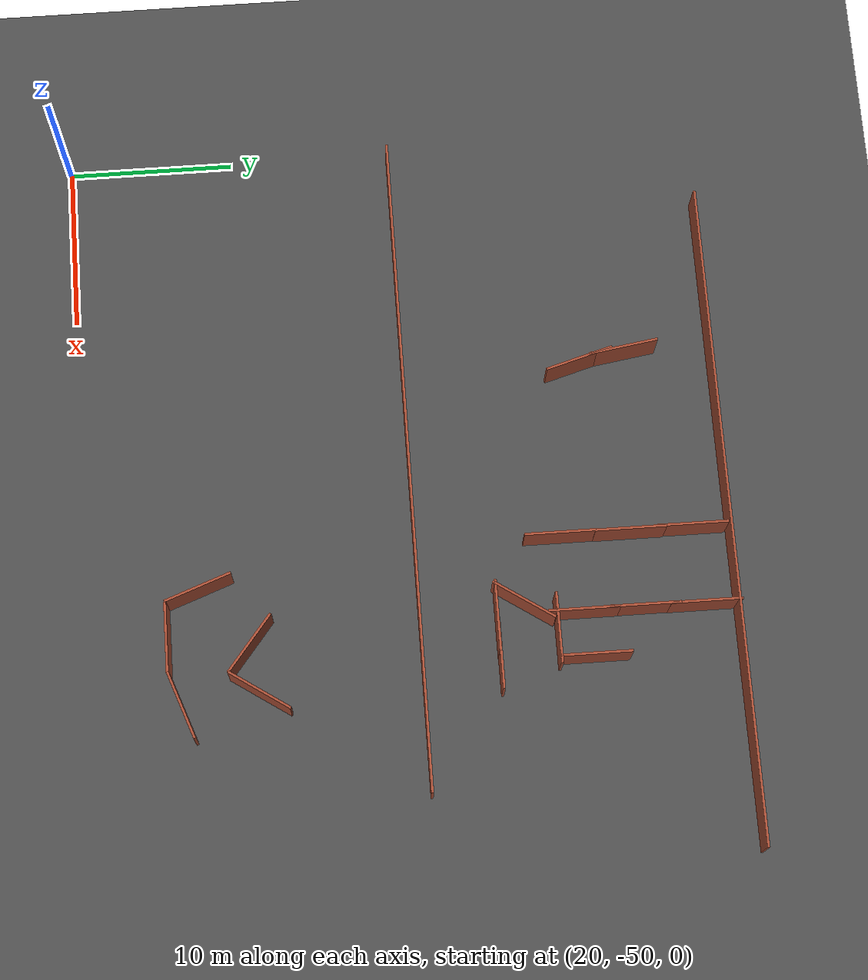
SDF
<sdf version="1.6">
 <world name="default">
  <model name="ground_plane">
   <static>1</static>
   <link name="link">
    <collision name="collision">
     <geometry><plane><normal>0 0 1</normal><size>200 200</size></plane></geometry>
     <surface><friction><ode><mu>100</mu><mu2>50</mu2></ode></friction></surface>
    </collision>
    <visual name="visual">
     <cast_shadows>0</cast_shadows>
     <geometry><plane><normal>0 0 1</normal><size>200 200</size></plane></geometry>
     <material>
      <script><uri>file://media/materials/scripts/gazebo.material</uri><name>Gazebo/Grey</name></script>
     </material>
    </visual>
   </link>
  </model>
  <model name="asphalt_plane">
   <static>1</static>
   <link name="link">
    <collision name="collision"><geometry><box><size>200 200 0.1</size></box></geometry></collision>
    <visual name="visual">
     <cast_shadows>0</cast_shadows>
     <geometry><box><size>200 200 0.1</size></box></geometry>
     <material>
      <script>
       <uri>model://asphalt_plane/materials/scripts</uri>
       <uri>model://asphalt_plane/materials/textures</uri>
       <name>vrc/asphalt</name>
      </script>
     </material>
    </visual>
   </link>
  </model>
  <model name="longwall_clone">
   <pose>40.5339 -30.0862 0 0 -0 0</pose>
   <link name="Wall_0">
    <collision name="Wall_0_Collision">
     <geometry><box><size>40.5 0.15 2.5</size></box></geometry>
     <pose>0 0 1.25 0 -0 0</pose>
    </collision>
    <visual name="Wall_0_Visual">
     <pose>0 0 1.25 0 -0 0</pose>
     <geometry><box><size>40.5 0.15 2.5</size></box></geometry>
     <material>
      <script><uri>file://media/materials/scripts/gazebo.material</uri><name>Gazebo/Bricks</name></script>
      <ambient>1 1 1 1</ambient>
     </material>
    </visual>
    <pose>1e-06 0 0 0 -0 0</pose>
   </link>
   <static>1</static>
  </model>
  <model name="worlds_1_clone_1_clone_7_clone_clone">
   <pose>54.1633 -39.674 0 0 0 -0.589381</pose>
   <link name="Wall_0">
    <collision name="Wall_0_Collision">
     <geometry><box><size>4.25 0.15 2.5</size></box></geometry>
     <pose>0 0 1.25 0 -0 0</pose>
    </collision>
    <visual name="Wall_0_Visual">
     <pose>0 0 1.25 0 -0 0</pose>
     <geometry><box><size>4.25 0.15 2.5</size></box></geometry>
     <material>
      <script><uri>file://media/materials/scripts/gazebo.material</uri><name>Gazebo/Bricks</name></script>
      <ambient>1 1 1 1</ambient>
     </material>
    </visual>
    <pose>0 -0 0 0 -0 1.5708</pose>
   </link>
   <static>1</static>
  </model>
  <model name="worlds_1_clone_0_clone_clone_0_clone_clone_0_clone_clone">
   <pose>47.8022 -43.0147 0 0 0 -2.78777</pose>
   <link name="Wall_0">
    <collision name="Wall_0_Collision">
     <geometry><box><size>4.25 0.15 2.5</size></box></geometry>
     <pose>0 0 1.25 0 -0 0</pose>
    </collision>
    <visual name="Wall_0_Visual">
     <pose>0 0 1.25 0 -0 0</pose>
     <geometry><box><size>4.25 0.15 2.5</size></box></geometry>
     <material>
      <script><uri>file://media/materials/scripts/gazebo.material</uri><name>Gazebo/Bricks</name></script>
      <ambient>1 1 1 1</ambient>
     </material>
    </visual>
    <pose>0 -0 0 0 -0 1.5708</pose>
   </link>
   <static>1</static>
  </model>
  <model name="worlds_1_clone_0_clone_clone_0_clone_clone_0_clone_clone_0">
   <pose>54.7413 -44.255 0 0 0 -1.22347</pose>
   <link name="Wall_0">
    <collision name="Wall_0_Collision">
     <geometry><box><size>4.25 0.15 2.5</size></box></geometry>
     <pose>0 0 1.25 0 -0 0</pose>
    </collision>
    <visual name="Wall_0_Visual">
     <pose>0 0 1.25 0 -0 0</pose>
     <geometry><box><size>4.25 0.15 2.5</size></box></geometry>
     <material>
      <script><uri>file://media/materials/scripts/gazebo.material</uri><name>Gazebo/Bricks</name></script>
      <ambient>1 1 1 1</ambient>
     </material>
    </visual>
    <pose>0 -0 0 0 -0 1.5708</pose>
   </link>
   <static>1</static>
  </model>
  <model name="worlds_1_clone_0_clone_clone_0_clone_clone_0_clone_clone_clone">
   <pose>50.6997 -44.9664 0 0 0 -1.57092</pose>
   <link name="Wall_0">
    <collision name="Wall_0_Collision">
     <geometry><box><size>4.25 0.15 2.5</size></box></geometry>
     <pose>0 0 1.25 0 -0 0</pose>
    </collision>
    <visual name="Wall_0_Visual">
     <pose>0 0 1.25 0 -0 0</pose>
     <geometry><box><size>4.25 0.15 2.5</size></box></geometry>
     <material>
      <script><uri>file://media/materials/scripts/gazebo.material</uri><name>Gazebo/Bricks</name></script>
      <ambient>1 1 1 1</ambient>
     </material>
    </visual>
    <pose>0 -0 0 0 -0 1.5708</pose>
   </link>
   <static>1</static>
  </model>
  <model name="worlds_1_clone_1_clone_7_clone_clone_0">
   <pose>51.3459 -40.1271 0 0 -0 0.90029</pose>
   <link name="Wall_0">
    <collision name="Wall_0_Collision">
     <geometry><box><size>4.25 0.15 2.5</size></box></geometry>
     <pose>0 0 1.25 0 -0 0</pose>
    </collision>
    <visual name="Wall_0_Visual">
     <pose>0 0 1.25 0 -0 0</pose>
     <geometry><box><size>4.25 0.15 2.5</size></box></geometry>
     <material>
      <script><uri>file://media/materials/scripts/gazebo.material</uri><name>Gazebo/Bricks</name></script>
      <ambient>1 1 1 1</ambient>
     </material>
    </visual>
    <pose>0 -0 0 0 -0 1.5708</pose>
   </link>
   <static>1</static>
  </model>
  <model name="longwall_clone_clone_clone">
   <pose>44.9259 -11.2589 0 0 -0 0</pose>
   <link name="Wall_0">
    <collision name="Wall_0_Collision">
     <geometry><box><size>40.5 0.15 2.5</size></box></geometry>
     <pose>0 0 1.25 0 -0 0</pose>
    </collision>
    <visual name="Wall_0_Visual">
     <pose>0 0 1.25 0 -0 0</pose>
     <geometry><box><size>40.5 0.15 2.5</size></box></geometry>
     <material>
      <script><uri>file://media/materials/scripts/gazebo.material</uri><name>Gazebo/Bricks</name></script>
      <ambient>1 1 1 1</ambient>
     </material>
    </visual>
    <pose>1e-06 0 0 0 -0 0</pose>
   </link>
   <static>1</static>
  </model>
  <model name="worlds_1_clone_1_clone_clone_0_clone_3">
   <pose>45.9096 -21.4531 0 0 -0 0</pose>
   <link name="Wall_0">
    <collision name="Wall_0_Collision">
     <geometry><box><size>4.25 0.15 2.5</size></box></geometry>
     <pose>0 0 1.25 0 -0 0</pose>
    </collision>
    <visual name="Wall_0_Visual">
     <pose>0 0 1.25 0 -0 0</pose>
     <geometry><box><size>4.25 0.15 2.5</size></box></geometry>
     <material>
      <script><uri>file://media/materials/scripts/gazebo.material</uri><name>Gazebo/Bricks</name></script>
      <ambient>1 1 1 1</ambient>
     </material>
    </visual>
    <pose>0 -0 0 0 -0 1.5708</pose>
   </link>
   <static>1</static>
  </model>
  <model name="worlds_1_clone_1_clone_clone_0_clone_5">
   <pose>45.9289 -17.2509 0 0 -0 0</pose>
   <link name="Wall_0">
    <collision name="Wall_0_Collision">
     <geometry><box><size>4.25 0.15 2.5</size></box></geometry>
     <pose>0 0 1.25 0 -0 0</pose>
    </collision>
    <visual name="Wall_0_Visual">
     <pose>0 0 1.25 0 -0 0</pose>
     <geometry><box><size>4.25 0.15 2.5</size></box></geometry>
     <material>
      <script><uri>file://media/materials/scripts/gazebo.material</uri><name>Gazebo/Bricks</name></script>
      <ambient>1 1 1 1</ambient>
     </material>
    </visual>
    <pose>0 -0 0 0 -0 1.5708</pose>
   </link>
   <static>1</static>
  </model>
  <model name="worlds_1_clone_1_clone_clone_0_clone_6">
   <pose>45.8934 -13.5337 0 0 -0 0</pose>
   <link name="Wall_0">
    <collision name="Wall_0_Collision">
     <geometry><box><size>4.25 0.15 2.5</size></box></geometry>
     <pose>0 0 1.25 0 -0 0</pose>
    </collision>
    <visual name="Wall_0_Visual">
     <pose>0 0 1.25 0 -0 0</pose>
     <geometry><box><size>4.25 0.15 2.5</size></box></geometry>
     <material>
      <script><uri>file://media/materials/scripts/gazebo.material</uri><name>Gazebo/Bricks</name></script>
      <ambient>1 1 1 1</ambient>
     </material>
    </visual>
    <pose>0 -0 0 0 -0 1.5708</pose>
   </link>
   <static>1</static>
  </model>
  <model name="worlds_1_clone_0_clone_clone_0_clone_2_clone">
   <pose>51.6197 -22 0 0 0 -1.57092</pose>
   <link name="Wall_0">
    <collision name="Wall_0_Collision">
     <geometry><box><size>4.25 0.15 2.5</size></box></geometry>
     <pose>0 0 1.25 0 -0 0</pose>
    </collision>
    <visual name="Wall_0_Visual">
     <pose>0 0 1.25 0 -0 0</pose>
     <geometry><box><size>4.25 0.15 2.5</size></box></geometry>
     <material>
      <script><uri>file://media/materials/scripts/gazebo.material</uri><name>Gazebo/Bricks</name></script>
      <ambient>1 1 1 1</ambient>
     </material>
    </visual>
    <pose>0 -0 0 0 -0 1.5708</pose>
   </link>
   <static>1</static>
  </model>
  <model name="worlds_1_clone_1_clone_0_clone">
   <pose>53.3077 -19.9406 0 0 -0 0</pose>
   <link name="Wall_0">
    <collision name="Wall_0_Collision">
     <geometry><box><size>4.25 0.15 2.5</size></box></geometry>
     <pose>0 0 1.25 0 -0 0</pose>
    </collision>
    <visual name="Wall_0_Visual">
     <pose>0 0 1.25 0 -0 0</pose>
     <geometry><box><size>4.25 0.15 2.5</size></box></geometry>
     <material>
      <script><uri>file://media/materials/scripts/gazebo.material</uri><name>Gazebo/Bricks</name></script>
      <ambient>1 1 1 1</ambient>
     </material>
    </visual>
    <pose>0 -0 0 0 -0 1.5708</pose>
   </link>
   <static>1</static>
  </model>
  <model name="worlds_1_clone_1_clone_0_clone_0">
   <pose>50.6047 -13.1994 0 0 -0 0</pose>
   <link name="Wall_0">
    <collision name="Wall_0_Collision">
     <geometry><box><size>4.25 0.15 2.5</size></box></geometry>
     <pose>0 0 1.25 0 -0 0</pose>
    </collision>
    <visual name="Wall_0_Visual">
     <pose>0 0 1.25 0 -0 0</pose>
     <geometry><box><size>4.25 0.15 2.5</size></box></geometry>
     <material>
      <script><uri>file://media/materials/scripts/gazebo.material</uri><name>Gazebo/Bricks</name></script>
      <ambient>1 1 1 1</ambient>
     </material>
    </visual>
    <pose>0 -0 0 0 -0 1.5708</pose>
   </link>
   <static>1</static>
  </model>
  <model name="worlds_1_clone_1_clone_0_clone_1">
   <pose>50.5879 -16.8459 0 0 -0 0</pose>
   <link name="Wall_0">
    <collision name="Wall_0_Collision">
     <geometry><box><size>4.25 0.15 2.5</size></box></geometry>
     <pose>0 0 1.25 0 -0 0</pose>
    </collision>
    <visual name="Wall_0_Visual">
     <pose>0 0 1.25 0 -0 0</pose>
     <geometry><box><size>4.25 0.15 2.5</size></box></geometry>
     <material>
      <script><uri>file://media/materials/scripts/gazebo.material</uri><name>Gazebo/Bricks</name></script>
      <ambient>1 1 1 1</ambient>
     </material>
    </visual>
    <pose>0 -0 0 0 -0 1.5708</pose>
   </link>
   <static>1</static>
  </model>
  <model name="worlds_1_clone_1_clone_0_clone_2">
   <pose>50.6056 -20.4384 0 0 -0 0</pose>
   <link name="Wall_0">
    <collision name="Wall_0_Collision">
     <geometry><box><size>4.25 0.15 2.5</size></box></geometry>
     <pose>0 0 1.25 0 -0 0</pose>
    </collision>
    <visual name="Wall_0_Visual">
     <pose>0 0 1.25 0 -0 0</pose>
     <geometry><box><size>4.25 0.15 2.5</size></box></geometry>
     <material>
      <script><uri>file://media/materials/scripts/gazebo.material</uri><name>Gazebo/Bricks</name></script>
      <ambient>1 1 1 1</ambient>
     </material>
    </visual>
    <pose>0 -0 0 0 -0 1.5708</pose>
   </link>
   <static>1</static>
  </model>
  <model name="worlds_1_clone_1_clone_7_clone_clone_clone_clone_clone">
   <pose>49.8181 -23.9028 0 0 0 -0.589382</pose>
   <link name="Wall_0">
    <collision name="Wall_0_Collision">
     <geometry><box><size>4.25 0.15 2.5</size></box></geometry>
     <pose>0 0 1.25 0 -0 0</pose>
    </collision>
    <visual name="Wall_0_Visual">
     <pose>0 0 1.25 0 -0 0</pose>
     <geometry><box><size>4.25 0.15 2.5</size></box></geometry>
     <material>
      <script><uri>file://media/materials/scripts/gazebo.material</uri><name>Gazebo/Bricks</name></script>
      <ambient>1 1 1 1</ambient>
     </material>
    </visual>
    <pose>0 -0 0 0 -0 1.5708</pose>
   </link>
   <static>1</static>
  </model>
  <model name="worlds_1_clone_0_clone_clone_0_clone_2_clone_0">
   <pose>50.6542 -25.5273 0 0 0 -1.57092</pose>
   <link name="Wall_0">
    <collision name="Wall_0_Collision">
     <geometry><box><size>4.25 0.15 2.5</size></box></geometry>
     <pose>0 0 1.25 0 -0 0</pose>
    </collision>
    <visual name="Wall_0_Visual">
     <pose>0 0 1.25 0 -0 0</pose>
     <geometry><box><size>4.25 0.15 2.5</size></box></geometry>
     <material>
      <script><uri>file://media/materials/scripts/gazebo.material</uri><name>Gazebo/Bricks</name></script>
      <ambient>1 1 1 1</ambient>
     </material>
    </visual>
    <pose>0 -0 0 0 -0 1.5708</pose>
   </link>
   <static>1</static>
  </model>
  <model name="worlds_1_clone_0_clone_clone_0_clone_2_clone_1">
   <pose>52.9238 -25.5053 0 0 0 -1.57092</pose>
   <link name="Wall_0">
    <collision name="Wall_0_Collision">
     <geometry><box><size>4.25 0.15 2.5</size></box></geometry>
     <pose>0 0 1.25 0 -0 0</pose>
    </collision>
    <visual name="Wall_0_Visual">
     <pose>0 0 1.25 0 -0 0</pose>
     <geometry><box><size>4.25 0.15 2.5</size></box></geometry>
     <material>
      <script><uri>file://media/materials/scripts/gazebo.material</uri><name>Gazebo/Bricks</name></script>
      <ambient>1 1 1 1</ambient>
     </material>
    </visual>
    <pose>0 -0 0 0 -0 1.5708</pose>
   </link>
   <static>1</static>
  </model>
  <model name="worlds_1_clone_1_clone_8">
   <pose>34.5498 -16.6137 0 0 -0 0.15582</pose>
   <link name="Wall_0">
    <collision name="Wall_0_Collision">
     <geometry><box><size>4.25 0.15 2.5</size></box></geometry>
     <pose>0 0 1.25 0 -0 0</pose>
    </collision>
    <visual name="Wall_0_Visual">
     <pose>0 0 1.25 0 -0 0</pose>
     <geometry><box><size>4.25 0.15 2.5</size></box></geometry>
     <material>
      <script><uri>file://media/materials/scripts/gazebo.material</uri><name>Gazebo/Bricks</name></script>
      <ambient>1 1 1 1</ambient>
     </material>
    </visual>
    <pose>0 -0 0 0 -0 1.5708</pose>
   </link>
   <static>1</static>
  </model>
  <model name="worlds_1_clone_1_clone_9">
   <pose>35.117 -19.3474 0 0 -0 0.28136</pose>
   <link name="Wall_0">
    <collision name="Wall_0_Collision">
     <geometry><box><size>4.25 0.15 2.5</size></box></geometry>
     <pose>0 0 1.25 0 -0 0</pose>
    </collision>
    <visual name="Wall_0_Visual">
     <pose>0 0 1.25 0 -0 0</pose>
     <geometry><box><size>4.25 0.15 2.5</size></box></geometry>
     <material>
      <script><uri>file://media/materials/scripts/gazebo.material</uri><name>Gazebo/Bricks</name></script>
      <ambient>1 1 1 1</ambient>
     </material>
    </visual>
    <pose>0 -0 0 0 -0 1.5708</pose>
   </link>
   <static>1</static>
  </model>
 </world>
</sdf>
